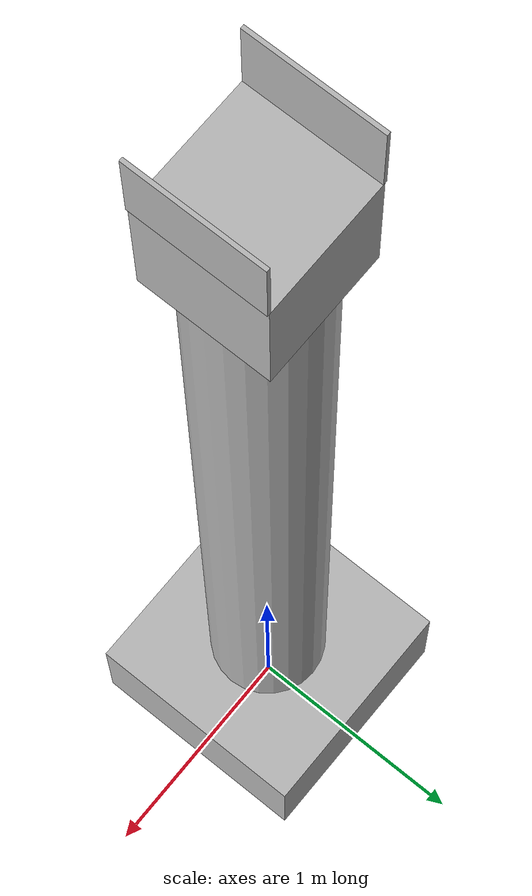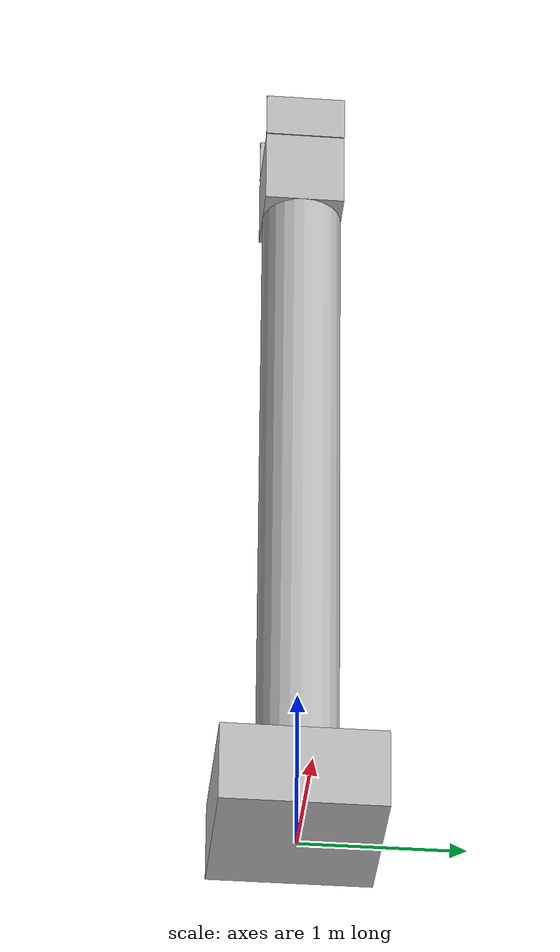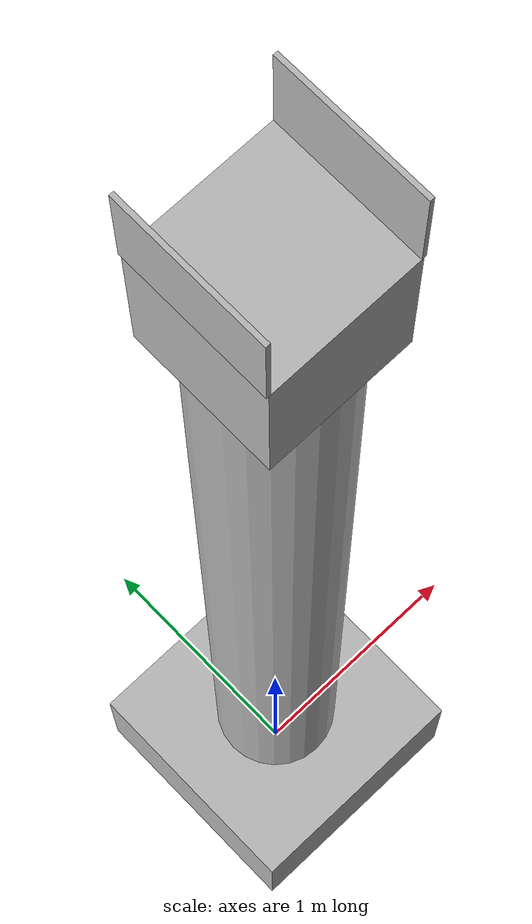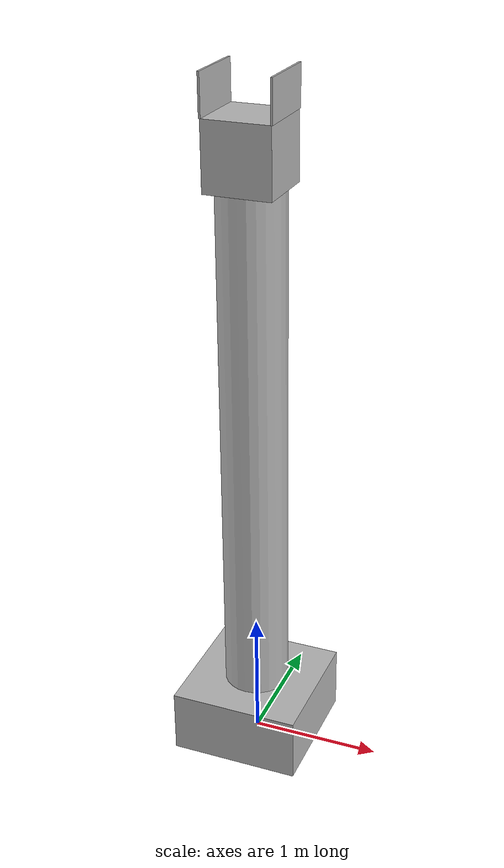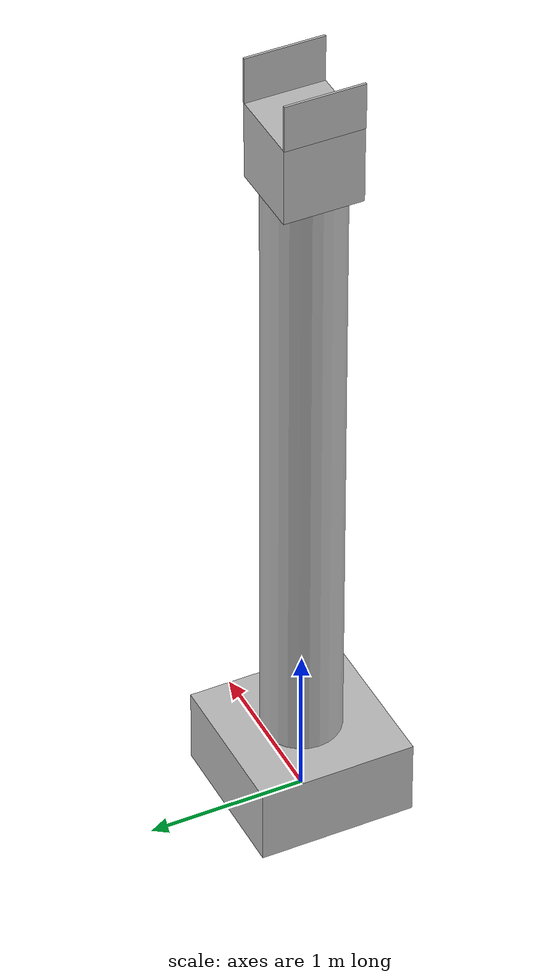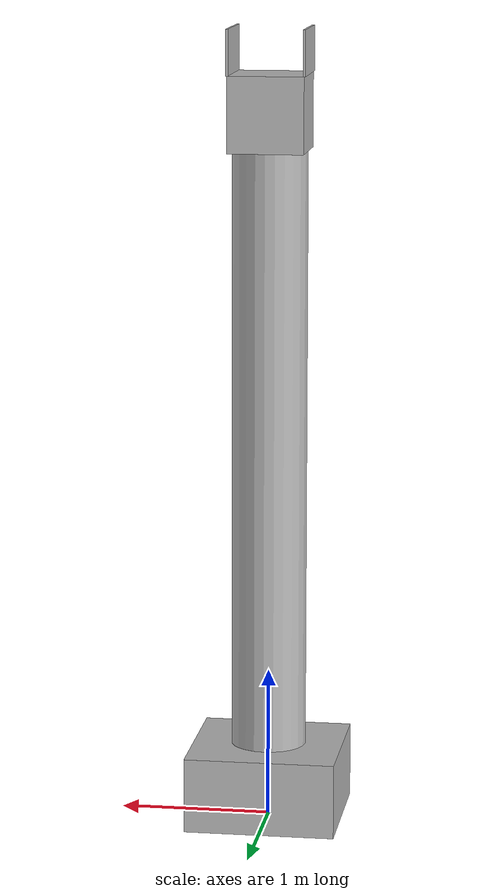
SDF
<?xml version='1.0'?>

    <sdf version='1.6'>
        <model name="SimpleArm">
            <self_collide>false</self_collide>
            <pose>0.0 0.0 0.0 0.0 0.0 0.0</pose>
            <!-- Start of parts of the pmodel SimpleArm -->
            <!-- End of parts of the pmodel SimpleArm -->

            <!-- Start of links of the pmodel SimpleArm -->
            <!-- link full name is SimpleArm::BaseLink -->
            <link name="1-BaseLink">
                <pose>0.0 0.0 0.25 0.0 0.0 0.0</pose>
                <inertial>
                    <pose>0.0 0.0 0.0 0.0 0.0 0.0</pose>
                    <inertia>
                        <ixx>10.417</ixx>
                        <ixy>0.0</ixy>
                        <ixz>0.0</ixz>
                        <iyy>16.667</iyy>
                        <iyz>0.0</iyz>
                        <izz>10.417</izz>
                    </inertia>
                    <mass>100</mass>
                </inertial>
                <!-- body full name is SimpleArm::BaseLink::BaseLink -->

                <visual name="1--BaseLink">
                    <laser_retro>0.0</laser_retro>
                    <pose>0.0 0.0 0.0 0.0 0.0 0.0</pose>
                    <geometry>
                        <box>
                            <size>1 1 0.5</size>
                        </box>
                    </geometry>
                </visual>
                If you wish to reflect these aspects in SDF,
                please add an appropriate annotation to the sensor. -->
                <!-- WARNING: Annotation not found for the sensor GoalBeamSensor. The SDF generator relies on annotations to specify aspects of the
                       sensor that are accounted for in the equations. --> If you wish to reflect these aspects in SDF,
                please add an appropriate annotation to the sensor. -->
            </link>
            <!-- link full name is SimpleArm::IntermediateLink -->
            <link name="2-IntermediateLink">
                <pose>0.0 0.0 2.5 0.0 0.0 0.0</pose>
                <inertial>
                    <pose>0.0 0.0 0.0 0.0 0.0 0.0</pose>
                    <inertia>
                        <ixx>1.349</ixx>
                        <ixy>0.0</ixy>
                        <ixz>0.0</ixz>
                        <iyy>1.349</iyy>
                        <iyz>0.0</iyz>
                        <izz>0.0313</izz>
                    </inertia>
                    <mass>1.0</mass>
                </inertial>
                <!-- body full name is SimpleArm::IntermediateLink::IntermediateLink -->

                <visual name="2--IntermediateLink">
                    <laser_retro>0.0</laser_retro>
                    <pose>0.0 0.0 0.0 0.0 0.0 0.0</pose>
                    <geometry>
                        <cylinder>
                            <radius>0.25</radius>
                            <length>4</length>
                        </cylinder>
                    </geometry>
                </visual>
            </link>
            <!-- link full name is SimpleArm::Gripper -->
            <link name="3-Gripper">
                <pose>0.0 0.0 4.75 0.0 0.0 0.0</pose>
                <inertial>
                    <pose>0.0 0.0 0.0 0.0 0.0 0.0</pose>
                    <inertia>
                        <ixx>0.0208</ixx>
                        <ixy>0.0</ixy>
                        <ixz>0.0</ixz>
                        <iyy>0.0208</iyy>
                        <iyz>0.0</iyz>
                        <izz>0.0208</izz>
                    </inertia>
                    <mass>0.5</mass>
                </inertial>
                <!-- body full name is SimpleArm::Gripper::Gripper -->
                <collision name="3--Gripper">
                    <laser_retro>0.0</laser_retro>
                    <pose>0.0 0.0 0.0 0.0 0.0 0.0</pose>
                    <geometry>
                        <box>
                            <size>0.5 0.5 0.5</size>
                        </box>
                    </geometry>
                    <surface>
                        <bounce>
                            <restitution_coefficient>0.0</restitution_coefficient>
                            <threshold>100000.0</threshold>
                        </bounce>
                        <friction>
                            <ode>
                                <mu>1.0</mu>
                                <mu2>1.0</mu2>
                                <fdir1>0.0 0.0 0.0</fdir1>
                                <slip1>0.0</slip1>
                                <slip2>0.0</slip2>
                            </ode>
                            <torsional>
                                <coefficient>1.0</coefficient>
                                <surface_radius>0.0</surface_radius>
                            </torsional>
                        </friction>
                    </surface>
                </collision>
                <visual name="3--Gripper">
                    <laser_retro>0.0</laser_retro>
                    <pose>0.0 0.0 0.0 0.0 0.0 0.0</pose>
                    <geometry>
                        <box>
                            <size>0.5 0.5 0.5</size>
                        </box>
                    </geometry>
                </visual>
            </link>
            <!-- link full name is SimpleArm::left_finger -->
            <link name="4-left_finger">
                <pose>-0.25 0.0 5.150000095367432 0.0 0.0 0.0</pose>
                <inertial>
                    <pose>0.0 0.0 0.0 0.0 0.0 0.0</pose>
                    <inertia>
                        <ixx>0.0000283</ixx>
                        <ixy>0.0</ixy>
                        <ixz>0.0</ixz>
                        <iyy>0.00000752</iyy>
                        <iyz>0.0</iyz>
                        <izz>0.0000209</izz>
                    </inertia>
                    <mass>0.001</mass>
                </inertial>
                <!-- body full name is SimpleArm::left_finger::left_finger -->
                <collision name="4--left_finger">
                    <laser_retro>0.0</laser_retro>
                    <pose>0.0 0.0 0.0 0.0 0.0 0.0</pose>
                    <geometry>
                        <box>
                            <size>0.015 0.5 0.3</size>
                        </box>
                    </geometry>
                    <surface>
                        <bounce>
                            <restitution_coefficient>0.0</restitution_coefficient>
                            <threshold>100000.0</threshold>
                        </bounce>
                        <friction>
                            <ode>
                                <mu>1.0</mu>
                                <mu2>1.0</mu2>
                                <fdir1>0.0 0.0 0.0</fdir1>
                                <slip1>0.0</slip1>
                                <slip2>0.0</slip2>
                            </ode>
                            <torsional>
                                <coefficient>1.0</coefficient>
                                <surface_radius>0.0</surface_radius>
                            </torsional>
                        </friction>
                    </surface>
                </collision>
                <visual name="4--left_finger">
                    <laser_retro>0.0</laser_retro>
                    <pose>0.0 0.0 0.0 0.0 0.0 0.0</pose>
                    <geometry>
                        <box>
                            <size>0.014999999664723873 0.5 0.30000001192092896</size>
                        </box>
                    </geometry>
                </visual>
            </link>
            <!-- link full name is SimpleArm::right_finger -->
            <link name="5-right_finger">
                <pose>0.25 0.0 5.150000095367432 0.0 0.0 0.0</pose>
                <inertial>
                    <pose>0.0 0.0 0.0 0.0 0.0 0.0</pose>
                    <inertia>
                        <ixx>0.0000283</ixx>
                        <ixy>0.0</ixy>
                        <ixz>0.0</ixz>
                        <iyy>0.00000752</iyy>
                        <iyz>0.0</iyz>
                        <izz>0.0000209</izz>
                    </inertia>
                    <mass>0.001</mass>
                </inertial>
                <!-- body full name is SimpleArm::right_finger::right_finger -->
                <collision name="5--right_finger">
                    <laser_retro>0.0</laser_retro>
                    <pose>0.0 0.0 0.0 0.0 0.0 0.0</pose>
                    <geometry>
                        <box>
                            <size>0.014999999664723873 0.5 0.30000001192092896</size>
                        </box>
                    </geometry>
                    <surface>
                        <bounce>
                            <restitution_coefficient>0.0</restitution_coefficient>
                            <threshold>100000.0</threshold>
                        </bounce>
                        <friction>
                            <ode>
                                <mu>1.0</mu>
                                <mu2>1.0</mu2>
                                <fdir1>0.0 0.0 0.0</fdir1>
                                <slip1>0.0</slip1>
                                <slip2>0.0</slip2>
                            </ode>
                            <torsional>
                                <coefficient>1.0</coefficient>
                                <surface_radius>0.0</surface_radius>
                            </torsional>
                        </friction>
                    </surface>
                </collision>
                <visual name="5--right_finger">
                    <laser_retro>0.0</laser_retro>
                    <pose>0.0 0.0 0.0 0.0 0.0 0.0</pose>
                    <geometry>
                        <box>
                            <size>0.014999999664723873 0.5 0.30000001192092896</size>
                        </box>
                    </geometry>
                </visual>
            </link>
            <!-- End of links of the pmodel SimpleArm -->

            <!-- Start of joints of the pmodel SimpleArm -->
            <!-- Full name of joint: SimpleArm::IntermediateLink::WristJoint from SimpleArm::IntermediateLink to SimpleArm::Gripper-->
            <joint name="6-WristJoint" type="revolute">
                <pose>0.0 0.0 -0.25 0.0 -0.0 0.0</pose>
                <parent>2-IntermediateLink</parent>
                <child>3-Gripper</child>
                <!-- WARNING: The SDF generator relies on annotations of the joint 6-WristJoint to specify in SDF aspects of the joint that are
                     accounted for in the equations. -->
                <axis>
                    <xyz>0 0 1</xyz>
                    <dynamics>
                        <damping>0</damping>
                        <friction>0</friction>
                        <spring_reference>0</spring_reference>
                        <spring_stiffness>0</spring_stiffness>
                    </dynamics>
                    <limit>
                        <lower>-6.2831854820251465</lower>
                        <upper>6.2831854820251465</upper>
                        <velocity>5</velocity>
                    </limit>
                </axis>
            </joint>
            <!-- Full name of joint: SimpleArm::BaseLink::ElbowJoint from SimpleArm::BaseLink to SimpleArm::IntermediateLink-->
            <joint name="7-ElbowJoint" type="revolute">
                <pose>0.0 0.0 -2.0 0.0 -0.0 0.0</pose>
                <parent>1-BaseLink</parent>
                <child>2-IntermediateLink</child>
                <!-- WARNING: The SDF generator relies on annotations of the joint 7-ElbowJoint to specify in SDF aspects of the joint that are
                     accounted for in the equations. -->
                <axis>
                    <xyz>1 0 0</xyz>
                    <dynamics>
                        <damping>0</damping>
                        <friction>0</friction>
                        <spring_reference>0</spring_reference>
                        <spring_stiffness>0</spring_stiffness>
                    </dynamics>
                    <limit>
                        <lower>-1.5707963705062866</lower>
                        <upper>1.5707963705062866</upper>
                        <velocity>5</velocity>
                    </limit>
                </axis>
            </joint>
            <!-- Full name of joint: SimpleArm::Gripper::left_slider from SimpleArm::Gripper to SimpleArm::left_finger-->
            <joint name="8-left_slider" type="prismatic">
                <pose>0.5 0.0 -0.15000009536743164 0.0 -0.0 0.0</pose>
                <parent>3-Gripper</parent>
                <child>4-left_finger</child>
                <!-- WARNING: The SDF generator relies on annotations of the joint 8-left_slider to specify in SDF aspects of the joint that are
                     accounted for in the equations. -->
                <axis>
                    <xyz>1 0 0</xyz>
                    <limit>
                        <effort>500</effort>
                    </limit>
                </axis>
            </joint>
            <!-- Full name of joint: SimpleArm::Gripper::right_slider from SimpleArm::Gripper to SimpleArm::right_finger-->
            <joint name="9-right_slider" type="prismatic">
                <pose>0.0 0.0 -0.15000009536743164 0.0 -0.0 0.0</pose>
                <parent>3-Gripper</parent>
                <child>5-right_finger</child>
                <!-- WARNING: The SDF generator relies on annotations of the joint 9-right_slider to specify in SDF aspects of the joint that are
                     accounted for in the equations. -->
                <axis>
                    <xyz>1 0 0</xyz>
                    <limit>
                        <effort>500</effort>
                    </limit>
                </axis>
            </joint>
            <!-- End of joints of the pmodel SimpleArm -->

            <!-- Start of fixed connections of the pmodel SimpleArm -->
            <!-- End of fixed connections of the pmodel SimpleArm -->
        </model>
    </sdf>
